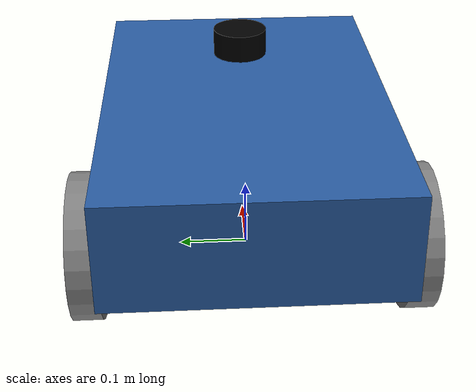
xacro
<?xml version="1.0"?>
<robot name="warehouse_robot" xmlns:xacro="http://www.ros.org/wiki/xacro">

  <xacro:include filename="common_properties.xacro" />
  <xacro:include filename="mobile_base.xacro" />
  <xacro:include filename="warehouse_robot.control.xacro" />

  <gazebo>
    <plugin filename="gz_ros2_control-system" name="gz_ros2_control::GazeboSimROS2ControlPlugin">
      <parameters>$(find warehouse_robot)/config/diff_control_drive.yaml</parameters>
    </plugin>
  </gazebo>

  <gazebo reference="lidar_link">
    <sensor name="lidar_sensor" type="gpu_lidar">
        <pose>0 0 0 0 0 0</pose>
        <frame_id>lidar_link</frame_id>
        <gz_frame_id>lidar_link</gz_frame_id>
        <topic>scan</topic>
        <update_rate>10</update_rate>

        <lidar>
            <scan>
                <horizontal>
                    <samples>360</samples>
                    <resolution>1</resolution>
                    <min_angle>-${pi}</min_angle>
                    <max_angle>${pi}</max_angle>
                </horizontal>
            </scan>

            <range>
                <min>0.10</min>
                <max>12.0</max>
                <resolution>0.01</resolution>
            </range>
        </lidar>

        <always_on>true</always_on>
        <visualize>true</visualize>
    </sensor>
</gazebo>

</robot>

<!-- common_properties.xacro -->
<robot xmlns:xacro="http://www.ros.org/wiki/xacro">

  <material name="blue">
    <color rgba="0.157 0.353 0.627 1.0" />
  </material>

  <material name="grey">
    <color rgba="0.5 0.5 0.5 1" />
  </material>

  <material name="black">
    <color rgba="0.0 0.0 0.0 1.0" />
  </material>

  <xacro:property name="chassis_length" value="0.6" />
  <xacro:property name="chassis_width" value="0.4" />
  <xacro:property name="chassis_height" value="0.15" />
  <xacro:property name="chassis_mass" value="10" />
  <xacro:property name="wheel_radius" value="0.1" />
  <xacro:property name="wheel_length" value="0.04" />
  <xacro:property name="wheel_mass" value="0.5" />
  <xacro:property name="wheel_seperation_from_center" value="0.22" />
  <xacro:property name="caster_wheel_radius" value="0.04" />
  <xacro:property name="lidar_radius" value="0.04"/>
  <xacro:property name="lidar_length" value="0.08"/>

  <xacro:macro name="box_inertia" params="m x y z origin_xyz origin_rpy">
    <inertial>
      <mass value="${m}" />
      <origin xyz="${origin_xyz}" rpy="${origin_rpy}" />
      <inertia ixx="${(m/12)*(y*y+z*z)}" ixy="0.0" ixz="0.0"
        iyy="${(m/12)*(z*z+x*x)}" iyz="0.0"
        izz="${(m/12)*(x*x+y*y)}"
      />
    </inertial>
  </xacro:macro>

  <xacro:macro name="cylinder_inertia" params="m r h origin_xyz origin_rpy">
    <inertial>
      <mass value="${m}" />
      <origin xyz="${origin_xyz}" rpy="${origin_rpy}" />
      <inertia ixx="${(m/12)*(3*(r*r)+h*h)}" ixy="0.0" ixz="0.0"
        iyy="${(m/12)*(3*(r*r)+h*h)}" iyz="0.0"
        izz="${(m/2)*(r*r)}"
      />
    </inertial>
  </xacro:macro>

  <xacro:macro name="sphere_inertia" params="m r origin_xyz origin_rpy">
    <inertial>
      <mass value="${m}" />
      <origin xyz="${origin_xyz}" rpy="${origin_rpy}" />
      <inertia ixx="${0.4*m*(r*r)}" ixy="0.0" ixz="0.0"
        iyy="${0.4*m*(r*r)}" iyz="0.0"
        izz="${0.4*m*(r*r)}"
      />
    </inertial>
  </xacro:macro>

</robot>

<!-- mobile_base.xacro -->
<robot xmlns:xacro="http://www.ros.org/wiki/xacro">

    <link name="base_footprint" />

    <link name="base_link">
        <visual>
            <geometry>
                <box size="${chassis_length} ${chassis_width} ${chassis_height}" />
            </geometry>
            <origin xyz="0 0 0" rpy="0 0 0" />
            <material name="blue" />
        </visual>
        <collision>
            <geometry>
                <box size="${chassis_length} ${chassis_width} ${chassis_height}" />
            </geometry>
            <origin xyz="0 0 0" rpy="0 0 0" />
        </collision>
        <xacro:box_inertia m="${chassis_mass}"
            x="${chassis_length}" y="${chassis_width}"
            z="${chassis_height}"
            origin_xyz="0 0 0" origin_rpy="0 0 0" />
    </link>

    <link name="wheel_left_link">
        <visual>
            <geometry>
                <cylinder length="${wheel_length}" radius="${wheel_radius}" />
            </geometry>
            <origin xyz="0 0 0" rpy="0 0 0" />
            <material name="grey" />
        </visual>
        <collision>
            <geometry>
                <cylinder length="${wheel_length}" radius="${wheel_radius}" />
            </geometry>
            <origin xyz="0 0 0" rpy="0 0 0" />
        </collision>
        <xacro:cylinder_inertia m="${wheel_mass}"
            r="${wheel_radius}" h="${wheel_length}"
            origin_xyz="0 0 0" origin_rpy="0 0 0" />
    </link>

    <link name="wheel_right_link">
        <visual>
            <geometry>
                <cylinder length="${wheel_length}" radius="${wheel_radius}" />
            </geometry>
            <origin xyz="0 0 0" rpy="0 0 0" />
            <material name="grey" />
        </visual>
        <collision>
            <geometry>
                <cylinder length="${wheel_length}" radius="${wheel_radius}" />
            </geometry>
            <origin xyz="0 0 0" rpy="0 0 0" />
        </collision>
        <xacro:cylinder_inertia m="${wheel_mass}"
            r="${wheel_radius}" h="${wheel_length}"
            origin_xyz="0 0 0" origin_rpy="0 0 0" />
    </link>

    <link name="caster_wheel_link">
        <visual>
            <geometry>
                <sphere radius="${caster_wheel_radius}" />
            </geometry>
            <origin xyz="0 0 0" rpy="0 0 0" />
            <material name="grey" />
        </visual>
        <collision>
            <geometry>
                <sphere radius="${caster_wheel_radius}" />
            </geometry>
            <origin xyz="0 0 0" rpy="0 0 0" />
        </collision>
        <xacro:sphere_inertia m="${wheel_mass}"
            r="${caster_wheel_radius}"
            origin_xyz="0 0 0" origin_rpy="0 0 0" />
    </link>

    <link name="lidar_link">
        <visual>
            <geometry>
                <cylinder radius="${lidar_radius}" length="${lidar_length}" />
            </geometry>
            <origin xyz="0 0 0" rpy="0 0 0" />
            <material name="black" />
        </visual>
        <collision>
            <geometry>
                <sphere radius="${caster_wheel_radius}" />
            </geometry>
            <origin xyz="0 0 0" rpy="0 0 0" />
        </collision>
    </link>

    <gazebo reference="caster_wheel_link">
        <mu1>0.0</mu1>
        <mu2>0.0</mu2>
    </gazebo>

    <joint name="footprint_base_joint" type="fixed">
        <parent link="base_footprint" />
        <child link="base_link" />
        <origin xyz="0 0 ${chassis_height/2+wheel_radius}" rpy="0 0 0" />
    </joint>

    <joint name="base_right_wheel_joint" type="continuous">
        <parent link="base_link" />
        <child link="wheel_right_link" />
        <origin xyz="-${chassis_length/4} -${wheel_seperation_from_center} -${chassis_height/2}"
            rpy="${pi/2} 0 0" />
        <axis xyz="0 0 -1" />
    </joint>

    <joint name="base_left_wheel_joint" type="continuous">
        <parent link="base_link" />
        <child link="wheel_left_link" />
        <origin xyz="-${chassis_length/4} ${wheel_seperation_from_center} -${chassis_height/2}"
            rpy="${pi/2} 0 0" />
        <axis xyz="0 0 -1" />
    </joint>

    <joint name="base_castor_wheel_joint" type="fixed">
        <parent link="base_link" />
        <child link="caster_wheel_link" />
        <origin
            xyz="${chassis_length/4} 0 -${chassis_height/2 + wheel_radius - caster_wheel_radius}"
            rpy="0 0 0" />
    </joint>

    <joint name="base_lidar_link" type="fixed">
        <parent link="base_link" />
        <child link="lidar_link" />
        <origin xyz="${chassis_length/4} 0 ${chassis_height/2}" rpy="0 0 0"></origin>
    </joint>

</robot>
